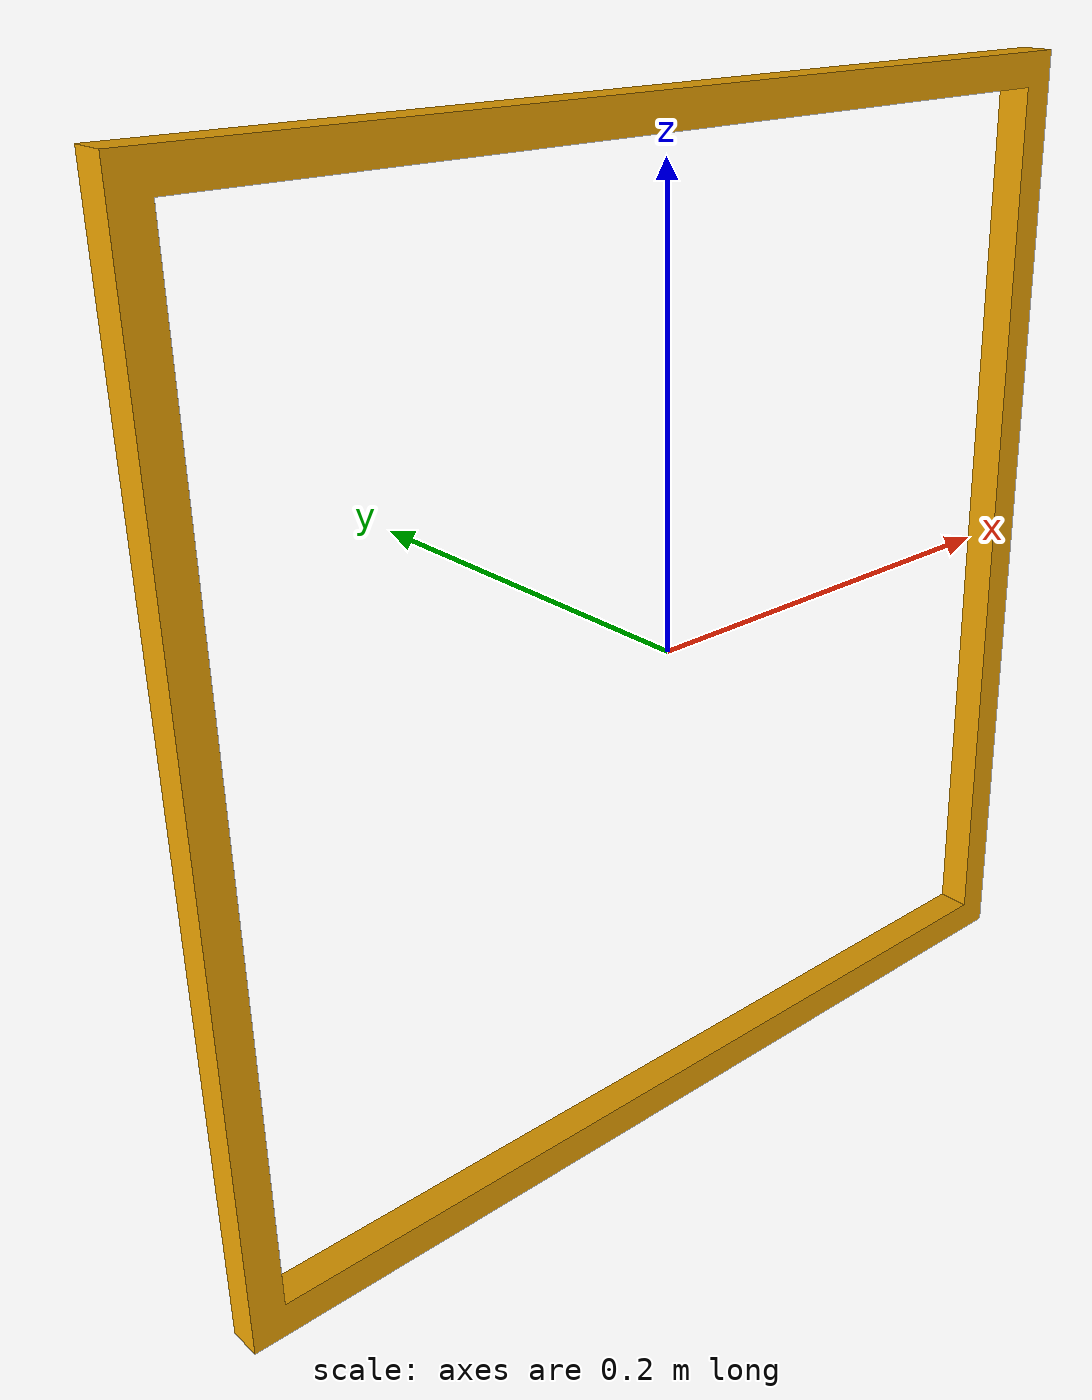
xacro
<?xml version="1.0"?>
<robot name="quadrotor/quadrotor">

    <macro name="frame_inertia">
        <inertia ixx="1.231E-04" ixy="-3.560E-08" ixz="4.131E-07"
                 iyy="1.218E-04" iyz="4.210E-07"
                 izz="1.942E-04" />
    </macro>

    <property name="PI" value="3.1415926535897931" />
    <property name="target_file" value="/home/nptttn/senior_project/ros/quadrotor/src/quad_sim/urdf/meshes/target.stl" />
    <link name="target">
        <inertial>
            <mass value="0.061399" />
            <origin xyz="0 0 0" rpy="0 0 0" />
            <frame_inertia />
        </inertial>
        <visual>
            <origin xyz="0 0 0" rpy="${PI/2} 0 0" />
            <geometry>
                <mesh filename="${target_file}" scale="0.015 0.015 0.015" />
            </geometry>
        </visual>
        <collision>
            <origin xyz="0 0 0" rpy="${PI/2} 0 0" />
            <geometry>
                <mesh filename="${target_file}" scale="0.015 0.015 0.015" />
            </geometry>
        </collision>
    </link>

</robot>
